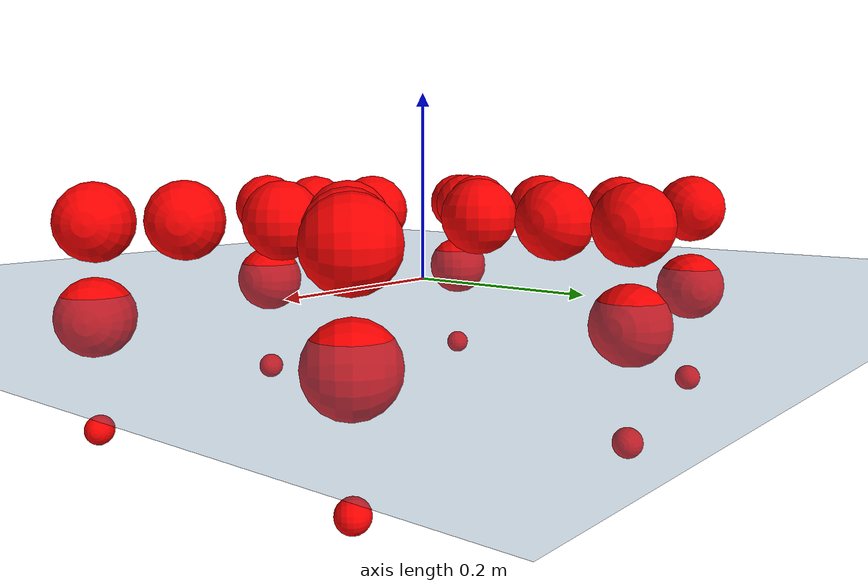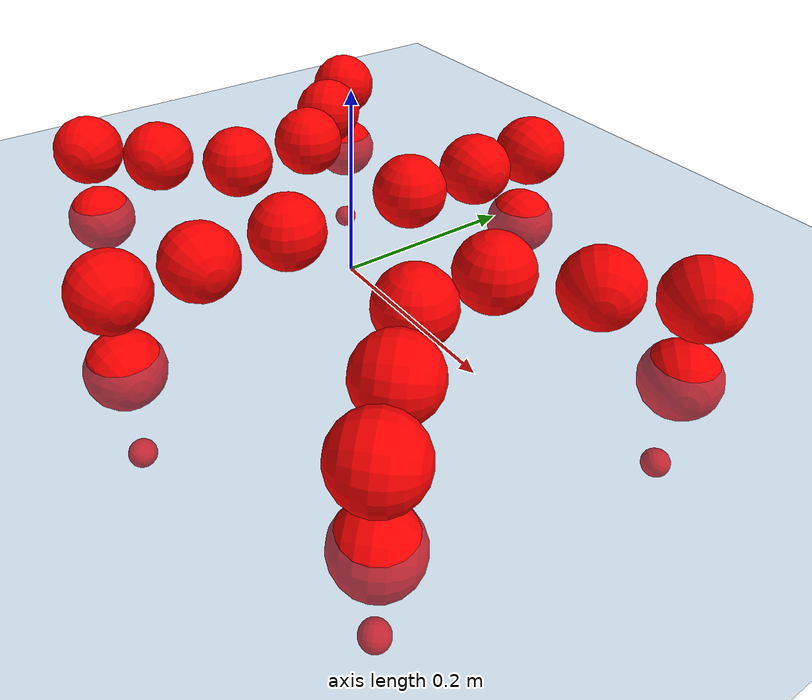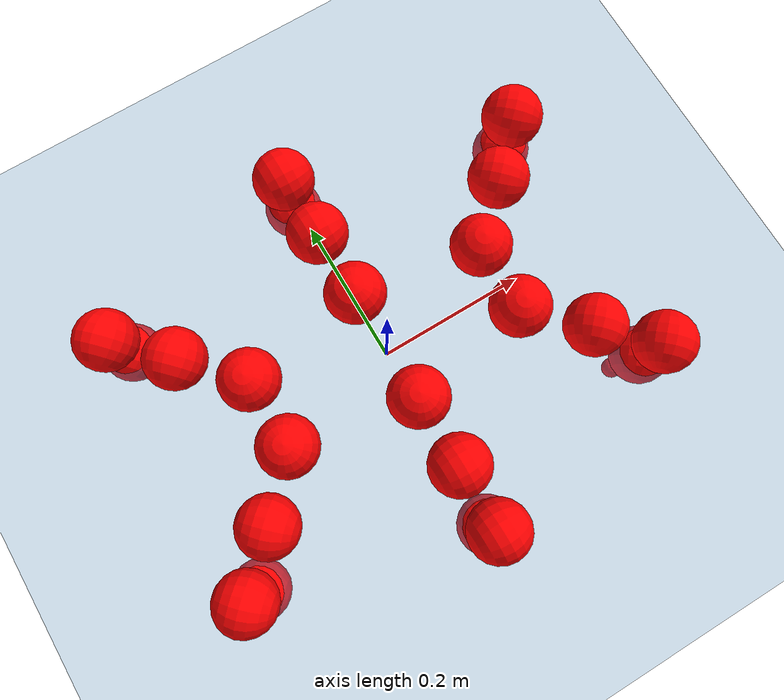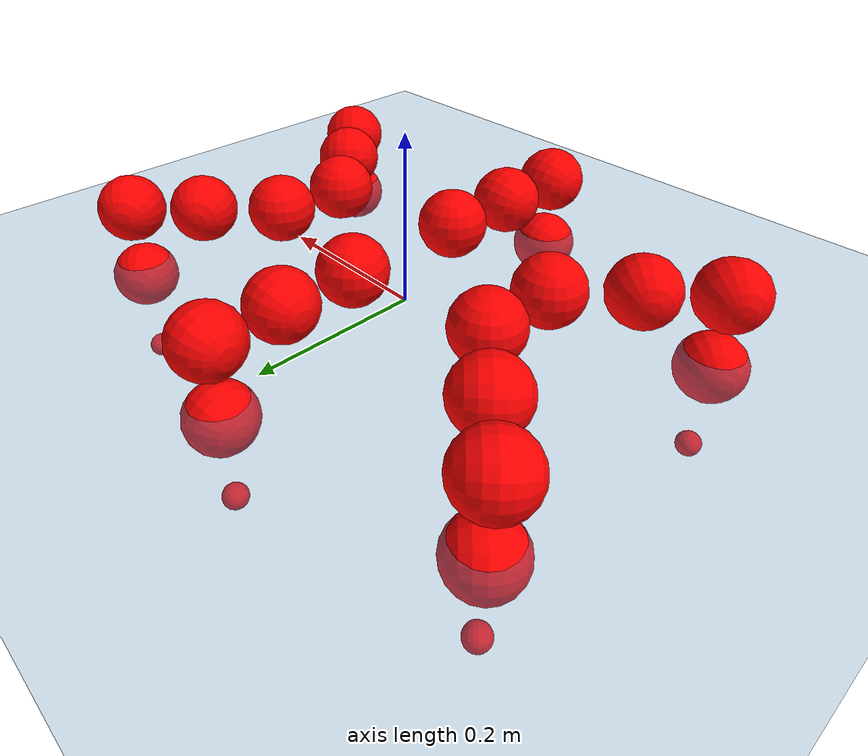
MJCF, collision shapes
<mujoco model="Golem">
  <compiler angle="radian" assetdir="assets" balanceinertia="true" inertiafromgeom="false"/>

  <option timestep="0.005" density="1.2" viscosity="2e-05"/>

  <size nkey="1"/>

  <visual>
    <quality shadowsize="8192"/>
    <map shadowclip="0.5"/>
  </visual>

  <default>
    <default class="/">
      <joint armature="0.01" damping="0.01" frictionloss="0.01"/>
      <geom contype="0" conaffinity="0" group="1" solref="-1000 -80"/>
      <site size="0.01 0.005 0.005" group="5"/>
      <general forcelimited="true" biastype="affine" gainprm="25" biasprm="0 -25 -0.5"/>
      <default class="visual">
        <geom type="mesh" group="2"/>
      </default>
      <default class="collision">
        <geom group="3"/>
      </default>
      <default class="foot">
        <geom size="0.01 0 0" condim="6" group="4" priority="1" solimp="0.015 1 0.01"/>
      </default>
      <default class="reward_collision_sphere">
        <geom group="5" rgba="1 0 0 1"/>
      </default>
    </default>
  </default>

  <asset>
    <texture type="skybox" colorspace="auto" name="//unnamed_texture_0" builtin="gradient" rgb1="0.95 0.95 0.95" rgb2="0.95 0.95 0.95" width="100" height="600"/>
    <texture type="2d" colorspace="auto" name="texplane" builtin="checker" rgb1="0.345 0.575 0.748" rgb2="0.345 0.575 0.748" markrgb="1 1 1" width="512" height="512"/>
    <material name="MatPlane" class="/" texture="texplane" texuniform="true" texrepeat="2 2" specular="0.9"/>
    <mesh name="body" class="/" file="body.stl" scale="0.001 0.001 0.001"/>
    <mesh name="coxa" class="/" file="coxa.stl" scale="0.001 0.001 0.001"/>
    <mesh name="femur" class="/" file="femur.stl" scale="0.001 0.001 0.001"/>
    <mesh name="tibia" class="/" file="tibia.stl" scale="0.001 0.001 0.001"/>
    <mesh name="tarsus" class="/" file="tarsus.stl" scale="0.001 0.001 0.001"/>
  </asset>

  <worldbody>
    <geom name="floor" class="/" size="100 100 0.125" type="plane" group="0" material="MatPlane"/>
    <light name="toplight_shadow" class="/" pos="0 0 5" dir="0.0990148 0.0990148 -0.990148" type="directional" ambient="0.04 0.04 0.04" diffuse="0.55 0.55 0.55" specular="0.12 0.12 0.12"/>
    <light name="toplight_fill" class="/" pos="0 0 5" dir="0.0990148 0.0990148 -0.990148" type="directional" castshadow="false" ambient="0.04 0.04 0.04" diffuse="0.3 0.3 0.3" specular="0.08 0.08 0.08"/>
    <body name="trunk" pos="0.000117288 0.00048647 6.34791e-05" quat="1 -0.000470137 -0.000142575 -0.000102849">
      <inertial pos="0.000202714 0.000237702 -0.00501106" quat="0.999998 8.76142e-05 0.000623514 -0.00187457" mass="3.46624" diaginertia="0.0123086 0.003331 0.0163349"/>
      <joint name="//unnamed_joint_0" type="free"/>
      <geom name="//unnamed_geom_1" class="/" pos="0 0 0.070686" quat="1 0 0 0" type="mesh" rgba="0.9 0.9 0.9 1" mesh="body"/>
      <site name="imu" class="/" pos="0.141026 -0.000652933 0.111322" size="0.00984402"/>
      <camera name="track" class="/" pos="0 -1.60889 0" quat="0.707107 0.707107 0 0" mode="trackcom"/>
      <camera name="ego_camera" class="/" pos="0.135758 0 0.110447" quat="-0.5 -0.5 0.5 0.5"/>
      <body name="coxa_RR" pos="-0.185207 -0.0680889 0.0702217" quat="0.382944 7.76042e-05 0.000439791 -0.923771">
        <inertial pos="-6.90417e-05 0.00035846 -0.000250585" quat="1 -0.000392369 0.00051284 0.000470782" mass="0.189457" diaginertia="0.0123761 0.00336154 0.0158502"/>
        <joint name="coxa_joint_RR" class="/" pos="0 0 0" axis="5.83177e-05 -0.00353035 -0.999994" range="-3.13931 3.15867" armature="0.00968102" damping="0.0114716" frictionloss="0.00960046"/>
        <geom name="//unnamed_geom_2" class="/" type="mesh" rgba="0.2 0.2 0.2 1" mesh="coxa"/>
        <geom name="//unnamed_geom_3" class="reward_collision_sphere" size="0.0393761" pos="-0.0313289 0 0"/>
        <body name="femur_RR" pos="0.0628447 0.00271115 -0.000895356" quat="0.499962 -0.499855 0.500004 0.500179">
          <inertial pos="-0.00204265 -0.000182664 -0.00237061" quat="0.999941 -0.0020813 -0.00474386 0.00954292" mass="0.18882" diaginertia="0.0123342 0.00333312 0.0161455"/>
          <joint name="femur_joint_RR" class="/" pos="0 0 0" axis="0.00136337 0.00564549 -0.999983" stiffness="0.00250216" range="-3.12576 3.13381" armature="0.0096467" damping="0" frictionloss="0.00980631"/>
          <geom name="//unnamed_geom_4" class="/" type="mesh" rgba="0.9 0.9 0.9 1" mesh="femur"/>
          <geom name="//unnamed_geom_5" class="reward_collision_sphere" size="0.0393761"/>
          <body name="tibia_RR" pos="0.00141198 -0.087173 -0.00151585" quat="0.000114183 1 4.86431e-05 0.000354536">
            <inertial pos="-0.00019615 -0.000128008 -0.00126454" quat="0.999997 1.80631e-05 -0.00250739 -0.000636295" mass="0.194039" diaginertia="0.0127979 0.00348715 0.0169768"/>
            <joint name="tibia_joint_RR" class="/" pos="0 0 0" axis="-0.00302661 0.00485754 0.999984" range="-3.13043 3.14133" armature="0.0102963" damping="0.00112024" frictionloss="0.00952572"/>
            <geom name="//unnamed_geom_6" class="/" type="mesh" rgba="0.2 0.2 0.2 1" mesh="tibia"/>
            <geom name="//unnamed_geom_7" class="reward_collision_sphere" size="0.0393761"/>
            <body name="tarsus_RR" pos="0.0910518 -0.000574404 -0.000416884" quat="1 0.000119739 -2.4109e-05 2.82566e-05">
              <inertial pos="0.0648004 0.000562381 -0.000365619" quat="0.493574 0.500897 0.508222 0.49719" mass="0.196876" diaginertia="0.0122915 0.0033672 0.0167593"/>
              <joint name="tarsus_joint_RR" class="/" pos="0 0 0" axis="-0.00380482 -0.00449183 0.999983" range="-3.14302 3.14195" armature="0.0103308" damping="0.0410301" frictionloss="0.00951355"/>
              <geom name="//unnamed_geom_8" class="/" type="mesh" rgba="0.9 0.9 0.9 1" mesh="tarsus"/>
              <geom name="foot_1" class="foot" size="0.0096638" pos="0.116961 0 0" quat="0 -0.707107 0 0.707107"/>
              <geom name="//unnamed_geom_10" class="reward_collision_sphere" size="0.0393761"/>
              <geom name="//unnamed_geom_11" class="reward_collision_sphere" size="0.014766" pos="0.112262 0 0"/>
              <site name="foot_1" class="foot" pos="0.116961 0 0" quat="0 -0.707107 0 0.707107" size="0.00984402"/>
            </body>
          </body>
        </body>
      </body>
      <body name="coxa_RM" pos="-0.000249209 -0.106189 0.0714824" quat="0.707334 0.000862567 -0.000501905 -0.706879">
        <inertial pos="-0.000728978 -0.000227725 -0.00144473" quat="0.999997 -0.00240523 -7.47399e-05 -0.000159713" mass="0.191191" diaginertia="0.0121614 0.00336131 0.0165382"/>
        <joint name="coxa_joint_RM" class="/" pos="0 0 0" axis="-0.00127514 8.34582e-05 -0.999999" range="-3.13777 3.12724" armature="0.0100213" damping="0.0100344" frictionloss="0.0103376"/>
        <geom name="//unnamed_geom_12" class="/" type="mesh" rgba="0.2 0.2 0.2 1" mesh="coxa"/>
        <geom name="//unnamed_geom_13" class="reward_collision_sphere" size="0.0393761" pos="-0.0313289 0 0"/>
        <body name="femur_RM" pos="0.0621974 -0.000495445 -0.00130921" quat="0.500001 -0.500002 0.499994 0.500002">
          <inertial pos="0.00180847 -0.000243955 -5.65437e-05" quat="0.999947 -0.00683313 0.000636475 -0.00766008" mass="0.191854" diaginertia="0.0123483 0.0033348 0.0163906"/>
          <joint name="femur_joint_RM" class="/" pos="0 0 0" axis="-0.00161344 0.00418543 -0.99999" range="-3.14418 3.1342" armature="0.00935268" damping="0.00708542" frictionloss="0.00957747"/>
          <geom name="//unnamed_geom_14" class="/" type="mesh" rgba="0.9 0.9 0.9 1" mesh="femur"/>
          <geom name="//unnamed_geom_15" class="reward_collision_sphere" size="0.0393761"/>
          <body name="tibia_RM" pos="3.92683e-05 -0.0865932 -0.000868056" quat="-9.24899e-06 1 5.53506e-05 3.48279e-05">
            <inertial pos="-0.00199335 -0.00111553 0.000462115" quat="0.999999 5.97829e-05 -0.00142743 0.000524971" mass="0.18833" diaginertia="0.012464 0.00333594 0.0159263"/>
            <joint name="tibia_joint_RM" class="/" pos="0 0 0" axis="0.00309713 0.000827744 0.999995" range="-3.13956 3.15908" armature="0.0099365" damping="0.0131902" frictionloss="0.0103433"/>
            <geom name="//unnamed_geom_16" class="/" type="mesh" rgba="0.2 0.2 0.2 1" mesh="tibia"/>
            <geom name="//unnamed_geom_17" class="reward_collision_sphere" size="0.0393761"/>
            <body name="tarsus_RM" pos="0.0908708 -0.00137541 0.000523792" quat="1 -6.779e-05 -9.19333e-06 -5.46331e-05">
              <inertial pos="0.062688 -0.000108794 -0.000142752" quat="0.499874 0.500515 0.500108 0.499502" mass="0.189894" diaginertia="0.0120651 0.00333271 0.0163543"/>
              <joint name="tarsus_joint_RM" class="/" pos="0 0 0" axis="-0.00280464 0.00191481 0.999994" range="-3.13146 3.13957" armature="0.00972381" damping="0.00676235" frictionloss="0.0100343"/>
              <geom name="//unnamed_geom_18" class="/" type="mesh" rgba="0.9 0.9 0.9 1" mesh="tarsus"/>
              <geom name="foot_2" class="foot" size="0.00928391" pos="0.116961 0 0" quat="0 -0.707107 0 0.707107"/>
              <geom name="//unnamed_geom_20" class="reward_collision_sphere" size="0.0393761"/>
              <geom name="//unnamed_geom_21" class="reward_collision_sphere" size="0.014766" pos="0.112262 0 0"/>
              <site name="foot_2" class="foot" pos="0.116961 0 0" quat="0 -0.707107 0 0.707107" size="0.00984402"/>
            </body>
          </body>
        </body>
      </body>
      <body name="coxa_RF" pos="0.186289 -0.0655393 0.0700489" quat="0.92392 0.000165681 -0.000138466 -0.382585">
        <inertial pos="-0.00211194 -9.17586e-05 0.000652825" quat="0.999984 -0.00207817 0.000716339 0.00519391" mass="0.194046" diaginertia="0.0121968 0.00325127 0.0161937"/>
        <joint name="coxa_joint_RF" class="/" pos="0 0 0" axis="-0.00308989 -0.000962986 -0.999995" range="-3.11875 3.14069" armature="0.0100634" damping="0.00932484" frictionloss="0.0102954"/>
        <geom name="//unnamed_geom_22" class="/" type="mesh" rgba="0.2 0.2 0.2 1" mesh="coxa"/>
        <geom name="//unnamed_geom_23" class="reward_collision_sphere" size="0.0393761" pos="-0.0313289 0 0"/>
        <body name="femur_RF" pos="0.0620837 -0.000790781 0.000491266" quat="0.500262 -0.500017 0.49952 0.5002">
          <inertial pos="-0.000620999 0.00185409 -0.000608047" quat="0.999997 0.00214623 0.000355505 -0.000865507" mass="0.191269" diaginertia="0.0124202 0.00333236 0.0163656"/>
          <joint name="femur_joint_RF" class="/" pos="0 0 0" axis="0.000607175 -0.000669018 -1" range="-3.13463 3.13802" armature="0.00994672" damping="0.0086916" frictionloss="0.0100952"/>
          <geom name="//unnamed_geom_24" class="/" type="mesh" rgba="0.9 0.9 0.9 1" mesh="femur"/>
          <geom name="//unnamed_geom_25" class="reward_collision_sphere" size="0.0393761"/>
          <body name="tibia_RF" pos="0.0013548 -0.0857182 0.000378705" quat="3.99575e-05 1 0.000239066 0.00033242">
            <inertial pos="-0.00134263 -0.000782136 0.00167076" quat="0.999996 0.000820533 -0.000467657 0.00276671" mass="0.191313" diaginertia="0.0124087 0.00338276 0.0163494"/>
            <joint name="tibia_joint_RF" class="/" pos="0 0 0" axis="-0.0013789 0.0016541 0.999998" range="-3.13627 3.12935" armature="0.00967544" damping="0" frictionloss="0.00993388"/>
            <geom name="//unnamed_geom_26" class="/" type="mesh" rgba="0.2 0.2 0.2 1" mesh="tibia"/>
            <geom name="//unnamed_geom_27" class="reward_collision_sphere" size="0.0393761"/>
            <body name="tarsus_RF" pos="0.0922762 0.00145375 -0.00104349" quat="1 3.75612e-05 -4.01176e-06 6.59055e-05">
              <inertial pos="0.0606061 0.000130271 -0.000180677" quat="0.499784 0.499708 0.499458 0.501049" mass="0.188017" diaginertia="0.0122376 0.00345285 0.016208"/>
              <joint name="tarsus_joint_RF" class="/" pos="0 0 0" axis="-0.00845428 -0.00280714 0.99996" range="-3.12488 3.13977" armature="0.0101708" damping="0" frictionloss="0.010969"/>
              <geom name="//unnamed_geom_28" class="/" type="mesh" rgba="0.9 0.9 0.9 1" mesh="tarsus"/>
              <geom name="foot_3" class="foot" size="0.0105134" pos="0.116961 0 0" quat="0 -0.707107 0 0.707107"/>
              <geom name="//unnamed_geom_30" class="reward_collision_sphere" size="0.0393761"/>
              <geom name="//unnamed_geom_31" class="reward_collision_sphere" size="0.014766" pos="0.112262 0 0"/>
              <site name="foot_3" class="foot" pos="0.116961 0 0" quat="0 -0.707107 0 0.707107" size="0.00984402"/>
            </body>
          </body>
        </body>
      </body>
      <body name="coxa_LR" pos="-0.185774 0.0688765 0.0714711" quat="0.383134 0.000302613 -0.000367204 0.923692">
        <inertial pos="-0.000187543 -0.00070716 -0.00167972" quat="0.999995 0.00148613 0.000310756 0.00291582" mass="0.182702" diaginertia="0.0120535 0.00326673 0.0159274"/>
        <joint name="coxa_joint_LR" class="/" pos="0 0 0" axis="4.93698e-05 -7.32539e-05 -1" range="-3.12421 3.18293" armature="0.0101674" damping="0.00823487" frictionloss="0.00876289"/>
        <geom name="//unnamed_geom_32" class="/" type="mesh" rgba="0.2 0.2 0.2 1" mesh="coxa"/>
        <geom name="//unnamed_geom_33" class="reward_collision_sphere" size="0.0393761" pos="-0.0313289 0 0"/>
        <body name="femur_LR" pos="0.0628845 -0.00253366 -0.00168442" quat="0.500016 -0.499929 0.500048 0.500006">
          <inertial pos="-3.54729e-05 -0.000805888 -0.000448666" quat="0.999996 0.00169378 0.0012874 0.00204501" mass="0.192477" diaginertia="0.0126818 0.00349387 0.0166696"/>
          <joint name="femur_joint_LR" class="/" pos="0 0 0" axis="0.00159781 0.00518714 0.999985" range="-3.13279 3.12633" armature="0.00985604" damping="0.0108082" frictionloss="0.0102265"/>
          <geom name="//unnamed_geom_34" class="/" type="mesh" rgba="0.9 0.9 0.9 1" mesh="femur"/>
          <geom name="//unnamed_geom_35" class="reward_collision_sphere" size="0.0393761"/>
          <body name="tibia_LR" pos="-0.000637799 -0.087739 -0.00104623" quat="-0.000214304 1 -0.000138134 -0.000233351">
            <inertial pos="-0.000413488 0.00215754 -6.58784e-05" quat="0.999992 0.0012582 0.00137787 -0.00362875" mass="0.189018" diaginertia="0.0127061 0.00339128 0.0158966"/>
            <joint name="tibia_joint_LR" class="/" pos="0 0 0" axis="0.000797064 0.00225967 -0.999997" range="-3.13566 3.13481" armature="0.00940249" damping="0.0012035" frictionloss="0.00954026"/>
            <geom name="//unnamed_geom_36" class="/" type="mesh" rgba="0.2 0.2 0.2 1" mesh="tibia"/>
            <geom name="//unnamed_geom_37" class="reward_collision_sphere" size="0.0393761"/>
            <body name="tarsus_LR" pos="0.0935123 0.000576759 0.00190956" quat="1 0.000525757 -0.000109387 -0.000112141">
              <inertial pos="0.0643177 0.000779349 0.0010977" quat="0.495884 0.501194 0.5014 0.5015" mass="0.183825" diaginertia="0.0119936 0.00326522 0.0159527"/>
              <joint name="tarsus_joint_LR" class="/" pos="0 0 0" axis="0.0014662 0.0023388 -0.999996" range="-3.14297 3.1404" armature="0.00866241" damping="0.0283649" frictionloss="0.0103214"/>
              <geom name="//unnamed_geom_38" class="/" type="mesh" rgba="0.9 0.9 0.9 1" mesh="tarsus"/>
              <geom name="foot_4" class="foot" size="0.00952415" pos="0.116961 0 0" quat="0.707107 0 -0.707107 0"/>
              <geom name="//unnamed_geom_40" class="reward_collision_sphere" size="0.0393761"/>
              <geom name="//unnamed_geom_41" class="reward_collision_sphere" size="0.014766" pos="0.112262 0 0"/>
              <site name="foot_4" class="foot" pos="0.116961 0 0" quat="0.707107 0 -0.707107 0" size="0.00984402"/>
            </body>
          </body>
        </body>
      </body>
      <body name="coxa_LM" pos="-0.000789696 0.10549 0.0709522" quat="0.707805 0.000234567 -2.63503e-05 0.706407">
        <inertial pos="0.00157728 -0.00160387 0.00151914" quat="0.999986 0.00508588 0.00056414 0.00100741" mass="0.191363" diaginertia="0.0121693 0.00335322 0.016342"/>
        <joint name="coxa_joint_LM" class="/" pos="0 0 0" axis="0.00272757 0.00255675 -0.999993" range="-3.1312 3.13741" armature="0.0109165" damping="0" frictionloss="0.00941156"/>
        <geom name="//unnamed_geom_42" class="/" type="mesh" rgba="0.2 0.2 0.2 1" mesh="coxa"/>
        <geom name="//unnamed_geom_43" class="reward_collision_sphere" size="0.0393761" pos="-0.0313289 0 0"/>
        <body name="femur_LM" pos="0.0597995 0.00164129 -0.000732645" quat="0.49998 -0.499997 0.500044 0.499979">
          <inertial pos="-0.00110699 4.52126e-05 -0.00163129" quat="0.999997 0.00194457 -0.0015749 -0.000109517" mass="0.194825" diaginertia="0.0124792 0.00339921 0.0164814"/>
          <joint name="femur_joint_LM" class="/" pos="0 0 0" axis="0.00337913 0.00471217 0.999983" range="-3.14486 3.12621" armature="0.00977497" damping="0.00621919" frictionloss="0.00989575"/>
          <geom name="//unnamed_geom_44" class="/" type="mesh" rgba="0.9 0.9 0.9 1" mesh="femur"/>
          <geom name="//unnamed_geom_45" class="reward_collision_sphere" size="0.0393761"/>
          <body name="tibia_LM" pos="0.000275667 -0.0836506 0.00140166" quat="1.70567e-05 1 3.34809e-05 0.000153173">
            <inertial pos="0.00197997 -0.0010053 0.00229134" quat="1 0.000542229 -0.000140544 0.000375462" mass="0.19073" diaginertia="0.0125404 0.00329777 0.0164753"/>
            <joint name="tibia_joint_LM" class="/" pos="0 0 0" axis="0.00380244 0.00235868 -0.99999" range="-3.15462 3.13871" armature="0.00988653" damping="0.00129016" frictionloss="0.00954905"/>
            <geom name="//unnamed_geom_46" class="/" type="mesh" rgba="0.2 0.2 0.2 1" mesh="tibia"/>
            <geom name="//unnamed_geom_47" class="reward_collision_sphere" size="0.0393761"/>
            <body name="tarsus_LM" pos="0.0938647 -0.000999651 0.000120367" quat="1 -3.26912e-05 -2.20032e-05 -3.56489e-05">
              <inertial pos="0.0625445 -0.000230154 -0.000328151" quat="0.500666 0.501786 0.498121 0.499419" mass="0.195881" diaginertia="0.0124529 0.00356284 0.0170866"/>
              <joint name="tarsus_joint_LM" class="/" pos="0 0 0" axis="0.00202699 -0.00153509 -0.999997" range="-3.18741 3.14785" armature="0.00997486" damping="0.00199239" frictionloss="0.00991717"/>
              <geom name="//unnamed_geom_48" class="/" type="mesh" rgba="0.9 0.9 0.9 1" mesh="tarsus"/>
              <geom name="foot_5" class="foot" size="0.00999882" pos="0.116961 0 0" quat="0.707107 0 -0.707107 0"/>
              <geom name="//unnamed_geom_50" class="reward_collision_sphere" size="0.0393761"/>
              <geom name="//unnamed_geom_51" class="reward_collision_sphere" size="0.014766" pos="0.112262 0 0"/>
              <site name="foot_5" class="foot" pos="0.116961 0 0" quat="0.707107 0 -0.707107 0" size="0.00984402"/>
            </body>
          </body>
        </body>
      </body>
      <body name="coxa_LF" pos="0.186341 0.0687514 0.0717021" quat="0.923636 -0.000405699 -0.000510943 0.38327">
        <inertial pos="-0.00015121 0.00227884 0.000626346" quat="1 -8.2009e-05 -1.96323e-05 0.000464802" mass="0.194028" diaginertia="0.0128211 0.00349067 0.0168255"/>
        <joint name="coxa_joint_LF" class="/" pos="0 0 0" axis="-0.00286971 -0.00275003 -0.999992" range="-3.13442 3.1482" armature="0.0110086" damping="0" frictionloss="0.00947348"/>
        <geom name="//unnamed_geom_52" class="/" type="mesh" rgba="0.2 0.2 0.2 1" mesh="coxa"/>
        <geom name="//unnamed_geom_53" class="reward_collision_sphere" size="0.0393761" pos="-0.0313289 0 0"/>
        <body name="femur_LF" pos="0.0628902 -0.00180003 -0.00286924" quat="0.500425 -0.499813 0.499677 0.500085">
          <inertial pos="3.57179e-05 0.000187443 0.00232822" quat="0.999975 0.00133154 0.00135242 0.0068294" mass="0.191978" diaginertia="0.0124559 0.00346648 0.0163247"/>
          <joint name="femur_joint_LF" class="/" pos="0 0 0" axis="-0.000572865 0.00131136 0.999999" range="-3.13358 3.09778" armature="0.00968776" damping="0" frictionloss="0.00963326"/>
          <geom name="//unnamed_geom_54" class="/" type="mesh" rgba="0.9 0.9 0.9 1" mesh="femur"/>
          <geom name="//unnamed_geom_55" class="reward_collision_sphere" size="0.0393761"/>
          <body name="tibia_LF" pos="0.000585092 -0.0869005 0.00124538" quat="-0.000316801 1 -0.000593313 3.99653e-05">
            <inertial pos="-0.000535431 -0.00175659 0.00030149" quat="0.999999 0.000597325 -0.000373167 -0.0013705" mass="0.19126" diaginertia="0.0125224 0.00337026 0.016627"/>
            <joint name="tibia_joint_LF" class="/" pos="0 0 0" axis="-0.00679695 -0.00427745 -0.999968" range="-3.16265 3.14661" armature="0.0097973" damping="0" frictionloss="0.0106912"/>
            <geom name="//unnamed_geom_56" class="/" type="mesh" rgba="0.2 0.2 0.2 1" mesh="tibia"/>
            <geom name="//unnamed_geom_57" class="reward_collision_sphere" size="0.0393761"/>
            <body name="tarsus_LF" pos="0.0927196 0.000129577 5.5742e-05" quat="0.999999 0.000667325 0.000565913 0.00082682">
              <inertial pos="0.0643654 3.89098e-05 0.000288911" quat="0.500456 0.501208 0.500531 0.497798" mass="0.191467" diaginertia="0.0120308 0.00327862 0.0162089"/>
              <joint name="tarsus_joint_LF" class="/" pos="0 0 0" axis="0.013655 0.000633434 -0.999907" stiffness="0.0264386" range="-3.15689 3.11514" armature="0.00936503" damping="0.0264799" frictionloss="0.00944292"/>
              <geom name="//unnamed_geom_58" class="/" type="mesh" rgba="0.9 0.9 0.9 1" mesh="tarsus"/>
              <geom name="foot_6" class="foot" size="0.00929573" pos="0.116961 0 0" quat="0.707107 0 -0.707107 0"/>
              <geom name="//unnamed_geom_60" class="reward_collision_sphere" size="0.0393761"/>
              <geom name="//unnamed_geom_61" class="reward_collision_sphere" size="0.014766" pos="0.112262 0 0"/>
              <site name="foot_6" class="foot" pos="0.116961 0 0" quat="0.707107 0 -0.707107 0" size="0.00984402"/>
            </body>
          </body>
        </body>
      </body>
    </body>
  </worldbody>

  <contact>
    <pair class="/" geom1="floor" geom2="foot_1" name="//unnamed_contact_0"/>
    <pair class="/" geom1="floor" geom2="foot_2" name="//unnamed_contact_1"/>
    <pair class="/" geom1="floor" geom2="foot_3" name="//unnamed_contact_2"/>
    <pair class="/" geom1="floor" geom2="foot_4" name="//unnamed_contact_3"/>
    <pair class="/" geom1="floor" geom2="foot_5" name="//unnamed_contact_4"/>
    <pair class="/" geom1="floor" geom2="foot_6" name="//unnamed_contact_5"/>
  </contact>

  <actuator>
    <general name="coxa_joint_RR" class="/" joint="coxa_joint_RR" forcerange="-6.65842 6.65842" gainprm="23.839" biasprm="0 -23.839 -0.51373"/>
    <general name="femur_joint_RR" class="/" joint="femur_joint_RR" forcerange="-6.93766 6.93766" gainprm="23.839" biasprm="0 -23.839 -0.51373"/>
    <general name="tibia_joint_RR" class="/" joint="tibia_joint_RR" forcerange="-6.58072 6.58072" gainprm="23.839" biasprm="0 -23.839 -0.51373"/>
    <general name="tarsus_joint_RR" class="/" joint="tarsus_joint_RR" forcerange="-7.00905 7.00905" gainprm="23.839" biasprm="0 -23.839 -0.51373"/>
    <general name="coxa_joint_RM" class="/" joint="coxa_joint_RM" forcerange="-7.18713 7.18713" gainprm="23.839" biasprm="0 -23.839 -0.51373"/>
    <general name="femur_joint_RM" class="/" joint="femur_joint_RM" forcerange="-7.20394 7.20394" gainprm="23.839" biasprm="0 -23.839 -0.51373"/>
    <general name="tibia_joint_RM" class="/" joint="tibia_joint_RM" forcerange="-6.75729 6.75729" gainprm="23.839" biasprm="0 -23.839 -0.51373"/>
    <general name="tarsus_joint_RM" class="/" joint="tarsus_joint_RM" forcerange="-7.77009 7.77009" gainprm="23.839" biasprm="0 -23.839 -0.51373"/>
    <general name="coxa_joint_RF" class="/" joint="coxa_joint_RF" forcerange="-7.13263 7.13263" gainprm="23.839" biasprm="0 -23.839 -0.51373"/>
    <general name="femur_joint_RF" class="/" joint="femur_joint_RF" forcerange="-7.23544 7.23544" gainprm="23.839" biasprm="0 -23.839 -0.51373"/>
    <general name="tibia_joint_RF" class="/" joint="tibia_joint_RF" forcerange="-7.69245 7.69245" gainprm="23.839" biasprm="0 -23.839 -0.51373"/>
    <general name="tarsus_joint_RF" class="/" joint="tarsus_joint_RF" forcerange="-6.92298 6.92298" gainprm="23.839" biasprm="0 -23.839 -0.51373"/>
    <general name="coxa_joint_LR" class="/" joint="coxa_joint_LR" forcerange="-7.1782 7.1782" gainprm="23.839" biasprm="0 -23.839 -0.51373"/>
    <general name="femur_joint_LR" class="/" joint="femur_joint_LR" forcerange="-6.91736 6.91736" gainprm="23.839" biasprm="0 -23.839 -0.51373"/>
    <general name="tibia_joint_LR" class="/" joint="tibia_joint_LR" forcerange="-7.45484 7.45484" gainprm="23.839" biasprm="0 -23.839 -0.51373"/>
    <general name="tarsus_joint_LR" class="/" joint="tarsus_joint_LR" forcerange="-7.19033 7.19033" gainprm="23.839" biasprm="0 -23.839 -0.51373"/>
    <general name="coxa_joint_LM" class="/" joint="coxa_joint_LM" forcerange="-7.45259 7.45259" gainprm="23.839" biasprm="0 -23.839 -0.51373"/>
    <general name="femur_joint_LM" class="/" joint="femur_joint_LM" forcerange="-7.37126 7.37126" gainprm="23.839" biasprm="0 -23.839 -0.51373"/>
    <general name="tibia_joint_LM" class="/" joint="tibia_joint_LM" forcerange="-7.08166 7.08166" gainprm="23.839" biasprm="0 -23.839 -0.51373"/>
    <general name="tarsus_joint_LM" class="/" joint="tarsus_joint_LM" forcerange="-7.22785 7.22785" gainprm="23.839" biasprm="0 -23.839 -0.51373"/>
    <general name="coxa_joint_LF" class="/" joint="coxa_joint_LF" forcerange="-7.45522 7.45522" gainprm="23.839" biasprm="0 -23.839 -0.51373"/>
    <general name="femur_joint_LF" class="/" joint="femur_joint_LF" forcerange="-7.04714 7.04714" gainprm="23.839" biasprm="0 -23.839 -0.51373"/>
    <general name="tibia_joint_LF" class="/" joint="tibia_joint_LF" forcerange="-7.19897 7.19897" gainprm="23.839" biasprm="0 -23.839 -0.51373"/>
    <general name="tarsus_joint_LF" class="/" joint="tarsus_joint_LF" forcerange="-7.45787 7.45787" gainprm="23.839" biasprm="0 -23.839 -0.51373"/>
  </actuator>

  <sensor>
    <gyro site="imu" name="imu_angular_velocity"/>
    <velocimeter site="imu" name="imu_linear_velocity"/>
    <framelinvel objtype="site" objname="foot_1" name="foot_1_global_linear_velocity"/>
    <framelinvel objtype="site" objname="foot_2" name="foot_2_global_linear_velocity"/>
    <framelinvel objtype="site" objname="foot_3" name="foot_3_global_linear_velocity"/>
    <framelinvel objtype="site" objname="foot_4" name="foot_4_global_linear_velocity"/>
    <framelinvel objtype="site" objname="foot_5" name="foot_5_global_linear_velocity"/>
    <framelinvel objtype="site" objname="foot_6" name="foot_6_global_linear_velocity"/>
  </sensor>

  <keyframe>
    <key name="home" qpos="0 0 0.1457 1 0 0 0 0 0 0 0 0 0 0 0 0 0 0 0 0 0 0 0 0 0 0 0 0 0 0 0"/>
  </keyframe>
</mujoco>
